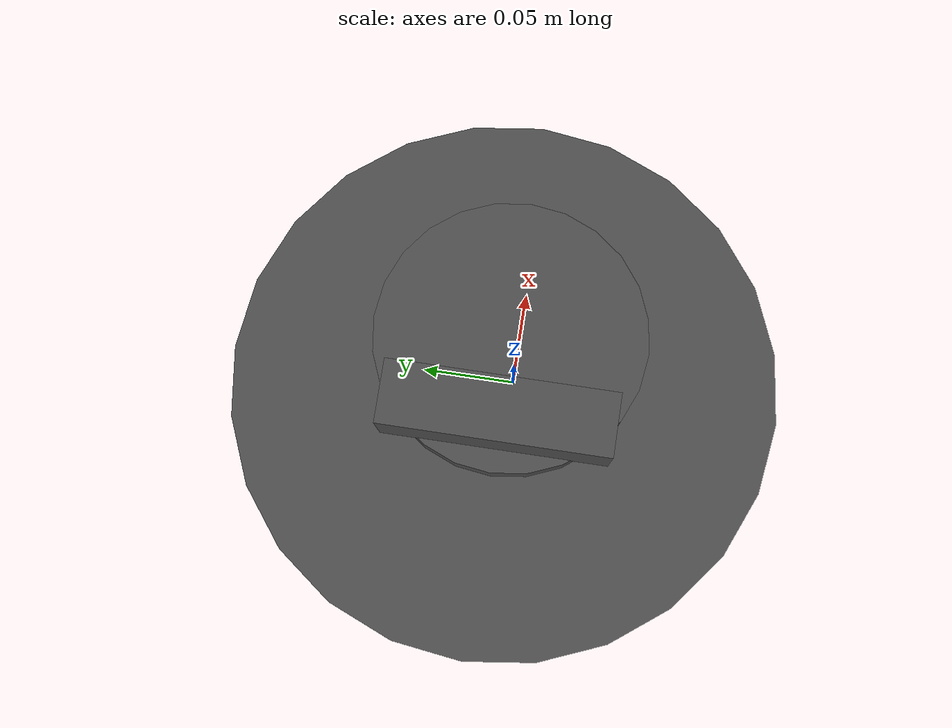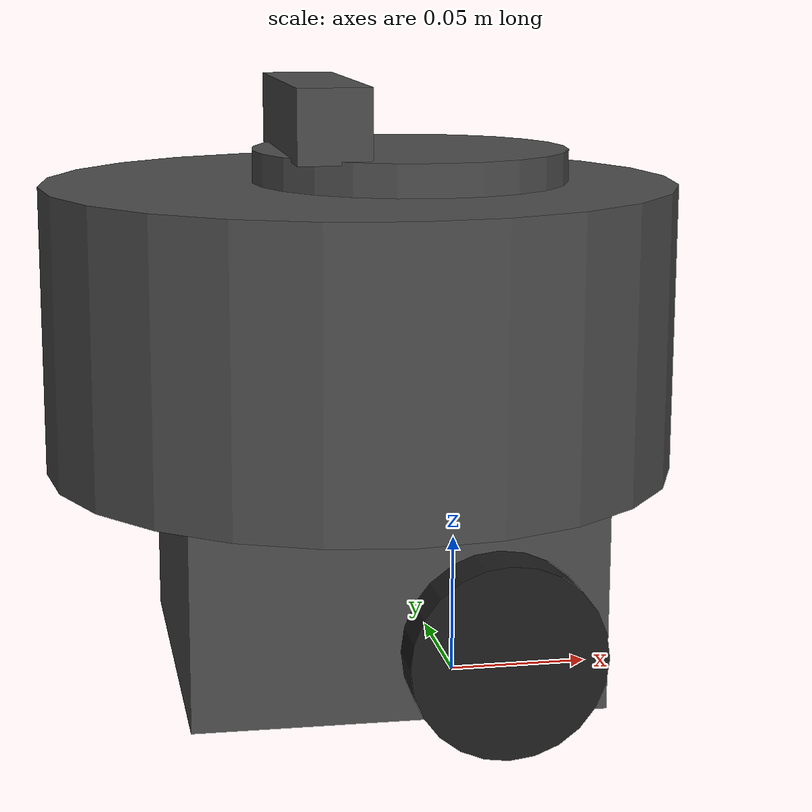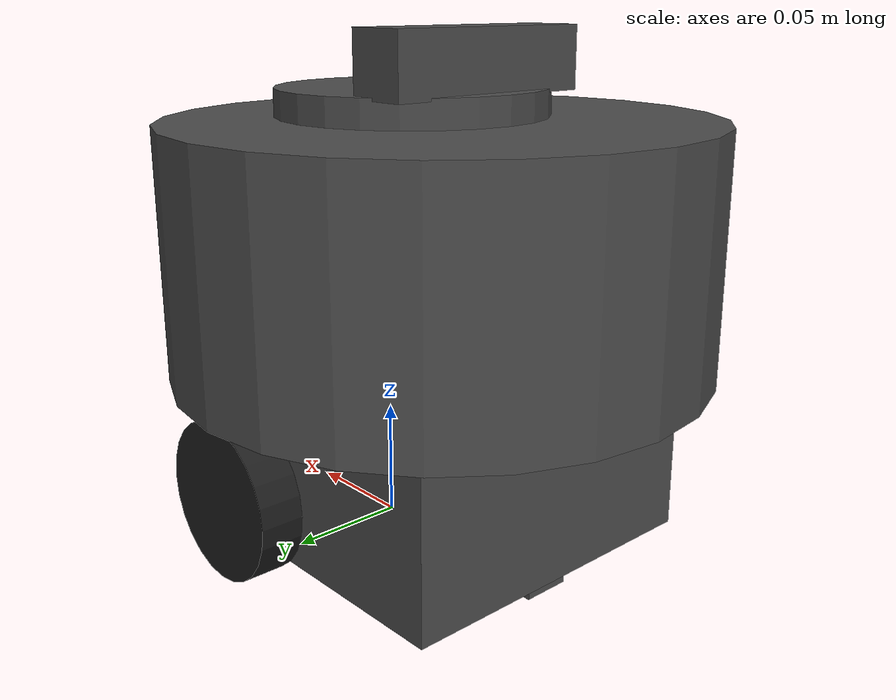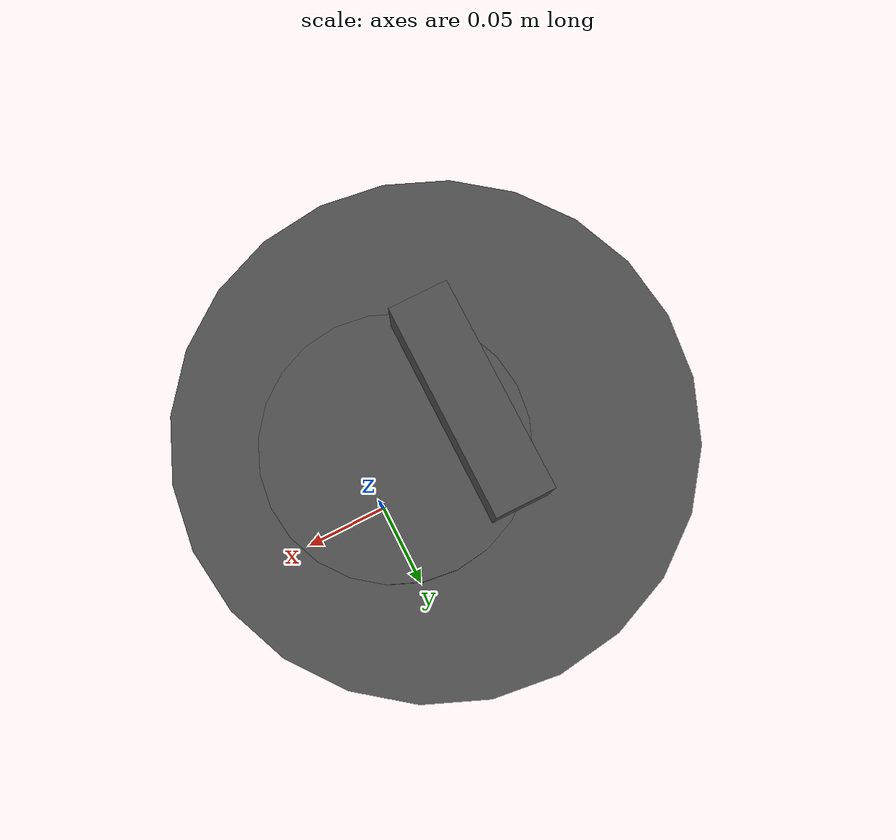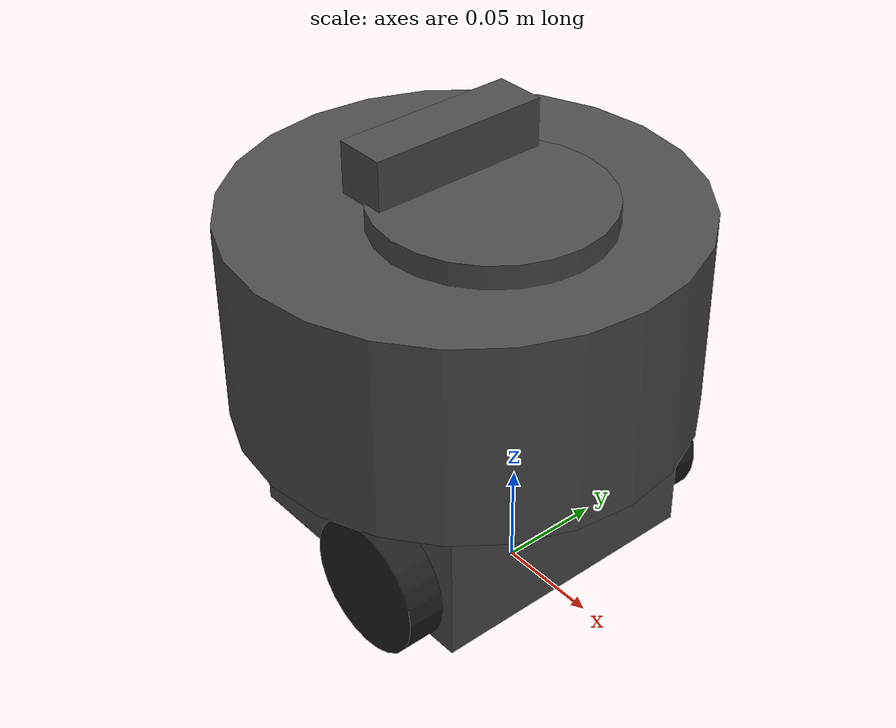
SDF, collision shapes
<sdf version='1.7'>
  <model name='tentabot'>
    <link name='turtlebot1/base_footprint'>
      <inertial>
        <pose>-0.00498 0.000142 0.033157 0 -0 0</pose>
        <mass>0.962535</mass>
        <inertia>
          <ixx>1.01139</ixx>
          <ixy>-6.14881e-06</ixy>
          <ixz>0.000666858</ixz>
          <iyy>1.00807</iyy>
          <iyz>-2.81274e-05</iyz>
          <izz>1.00805</izz>
        </inertia>
      </inertial>
      <collision name='turtlebot1/base_footprint_fixed_joint_lump__turtlebot1/base_link_collision'>
        <pose>-0.032 0 0.08 0 -0 0</pose>
        <geometry>
          <box>
            <size>0.14 0.14 0.143</size>
          </box>
        </geometry>
        <surface>
          <contact>
            <ode/>
          </contact>
          <friction>
            <ode/>
          </friction>
        </surface>
      </collision>
      <collision name='turtlebot1/base_footprint_fixed_joint_lump__bumper_collision_collision_1'>
        <pose>-0.035 0 0.13 0 -0 0</pose>
        <geometry>
          <cylinder>
            <length>0.1</length>
            <radius>0.11</radius>
          </cylinder>
        </geometry>
      </collision>
      <collision name='turtlebot1/base_footprint_fixed_joint_lump__d435_cam1camera_link_collision_2'>
        <pose>-0.05 0 0.2025 0 -0 0</pose>
        <geometry>
          <box>
            <size>0.02505 0.09 0.025</size>
          </box>
        </geometry>
        <surface>
          <contact>
            <ode/>
          </contact>
          <friction>
            <ode/>
          </friction>
        </surface>
      </collision>
      <collision name='turtlebot1/base_footprint_fixed_joint_lump__turtlebot1/caster_back_link_collision_3'>
        <pose>-0.081 1e-06 0.005 -1.57 0 0</pose>
        <geometry>
          <box>
            <size>0.03 0.009 0.02</size>
          </box>
        </geometry>
        <surface>
          <contact>
            <ode>
              <kp>1e+06</kp>
              <kd>100</kd>
              <max_vel>1</max_vel>
              <min_depth>0.001</min_depth>
            </ode>
          </contact>
          <friction>
            <ode>
              <mu>0.1</mu>
              <mu2>0.1</mu2>
            </ode>
          </friction>
        </surface>
      </collision>
      <collision name='turtlebot1/base_footprint_fixed_joint_lump__turtlebot1/base_scan_collision_4'>
        <pose>-0.017 0 0.1755 0 -0 0</pose>
        <geometry>
          <cylinder>
            <length>0.0315</length>
            <radius>0.055</radius>
          </cylinder>
        </geometry>
        <surface>
          <contact>
            <ode/>
          </contact>
          <friction>
            <ode/>
          </friction>
        </surface>
      </collision>
      <visual name='turtlebot1/base_footprint_fixed_joint_lump__turtlebot1/base_link_visual'>
        <pose>-0.032 0 0.01 0 -0 0</pose>
        <geometry>
          <mesh>
            <scale>0.001 0.001 0.001</scale>
            <uri>model://turtlebot3_description/meshes/bases/burger_base.stl</uri>
          </mesh>
        </geometry>
        <material>
          <script>
            <name>Gazebo/DarkGrey</name>
            <uri>file://media/materials/scripts/gazebo.material</uri>
          </script>
        </material>
      </visual>
      <visual name='turtlebot1/base_footprint_fixed_joint_lump__turtlebot1/bumper_link_visual_1'>
        <pose>-0.035 0 0.13 0 -0 0</pose>
        <geometry>
          <cylinder>
            <length>0.1</length>
            <radius>0.11</radius>
          </cylinder>
        </geometry>
        <material>
          <script>
            <name>Gazebo/Red</name>
            <uri>file://media/materials/scripts/gazebo.material</uri>
          </script>
        </material>
      </visual>
      <visual name='turtlebot1/base_footprint_fixed_joint_lump__d435_cam1camera_link_visual_2'>
        <pose>-0.0351 0 0.2025 1.5708 -0 1.5708</pose>
        <geometry>
          <mesh>
            <scale>0.001 0.001 0.001</scale>
            <uri>model://tentabot_devel/meshes/d435.stl</uri>
          </mesh>
        </geometry>
        <material>
          <script>
            <name>Gazebo/Grey</name>
            <uri>file://media/materials/scripts/gazebo.material</uri>
          </script>
        </material>
      </visual>
      <visual name='turtlebot1/base_footprint_fixed_joint_lump__turtlebot1/base_scan_visual_3'>
        <pose>-0.032 0 0.182 0 -0 0</pose>
        <geometry>
          <mesh>
            <scale>0.001 0.001 0.001</scale>
            <uri>model://turtlebot3_description/meshes/sensors/lds.stl</uri>
          </mesh>
        </geometry>
        <material>
          <script>
            <name>Gazebo/FlatBlack</name>
            <uri>file://media/materials/scripts/gazebo.material</uri>
          </script>
        </material>
      </visual>
      <velocity_decay/>
      <velocity_decay/>
      <self_collide>0</self_collide>
      <sensor name='turtlebot1/bumper_sensor' type='contact'>
        <visualize>1</visualize>
        <always_on>1</always_on>
        <update_rate>10</update_rate>
        <contact>
          <collision>turtlebot0/base_footprint_fixed_joint_lump__bumper_collision_collision_1</collision>
          <topic>__default_topic__</topic>
        </contact>
        <plugin name='gazebo_ros_bumper_controller' filename='libgazebo_ros_bumper.so'>
          <robotNamespace>turtlebot1</robotNamespace>
          <bumperTopicName>bumper_status</bumperTopicName>
          <frameName>turtlebot1/bumper_link</frameName>
        </plugin>
        <pose>-0.035 0 0.13 0 -0 0</pose>
      </sensor>
      <velocity_decay/>
      <velocity_decay/>
      <velocity_decay/>
      <sensor name='d435_cam1d435' type='depth'>
        <update_rate>30</update_rate>
        <camera>
          <horizontal_fov>1.59174</horizontal_fov>
          <image>
            <width>640</width>
            <height>480</height>
            <format>R8G8B8</format>
          </image>
          <clip>
            <near>0.02</near>
            <far>6</far>
          </clip>
        </camera>
        <plugin name='camera_plugin' filename='libgazebo_ros_openni_kinect.so'>
          <robotNamespace>/</robotNamespace>
          <visualize>1</visualize>
          <baseline>0.05</baseline>
          <alwaysOn>1</alwaysOn>
          <updateRate>0.0</updateRate>
          <cameraName>d435_cam1d435</cameraName>
          <imageTopicName>/d435_cam1d435/camera/color/image_raw</imageTopicName>
          <cameraInfoTopicName>/d435_cam1d435/camera/color/camera_info</cameraInfoTopicName>
          <depthImageTopicName>/d435_cam1d435/camera/depth/image_raw</depthImageTopicName>
          <depthImageInfoTopicName>/d435_cam1d435/camera/depth/camera_info</depthImageInfoTopicName>
          <pointCloudTopicName>/d435_cam1d435/camera/depth/color/points</pointCloudTopicName>
          <frameName>d435_cam1camera_depth_frame_gazebo</frameName>
          <pointCloudCutoff>0.02</pointCloudCutoff>
          <distortionK1>0</distortionK1>
          <distortionK2>0</distortionK2>
          <distortionK3>0</distortionK3>
          <distortionT1>0</distortionT1>
          <distortionT2>0</distortionT2>
          <CxPrime>0</CxPrime>
          <Cx>0</Cx>
          <Cy>0</Cy>
          <focalLength>0</focalLength>
          <hackBaseline>0</hackBaseline>
        </plugin>
        <pose>-0.05 0.0175 0.2025 0 -0 0</pose>
      </sensor>
      <velocity_decay/>
      <velocity_decay/>
      <velocity_decay/>
      <velocity_decay/>
      <velocity_decay/>
      <velocity_decay/>
      <velocity_decay/>
      <velocity_decay/>
      <velocity_decay/>
      <gravity>1</gravity>
      <velocity_decay/>
      <sensor name='imu' type='imu'>
        <always_on>1</always_on>
        <visualize>0</visualize>
        <pose>-0.032 0 0.078 0 -0 0</pose>
      </sensor>
      <gravity>1</gravity>
      <velocity_decay/>
      <sensor name='lds_lfcd_sensor' type='gpu_ray'>
        <visualize>1</visualize>
        <update_rate>50</update_rate>
        <ray>
          <scan>
            <horizontal>
              <samples>360</samples>
              <resolution>1</resolution>
              <min_angle>0</min_angle>
              <max_angle>6.28319</max_angle>
            </horizontal>
          </scan>
          <range>
            <min>0.12</min>
            <max>3.5</max>
            <resolution>0.015</resolution>
          </range>
          <noise>
            <type>gaussian</type>
            <mean>0</mean>
            <stddev>0.01</stddev>
          </noise>
        </ray>
        <plugin name='gazebo_ros_lds_lfcd_controller' filename='libgazebo_ros_gpu_laser.so'>
          <topicName>turtlebot1/scan</topicName>
          <frameName>turtlebot1/base_scan</frameName>
        </plugin>
        <pose>-0.032 0 0.182 0 -0 0</pose>
      </sensor>
    </link>
    <joint name='turtlebot1/wheel_left_joint' type='revolute'>
      <pose relative_to='turtlebot1/base_footprint'>0 0.08 0.033 -1.57 0 0</pose>
      <parent>turtlebot1/base_footprint</parent>
      <child>turtlebot1/wheel_left_link</child>
      <axis>
        <xyz>0 0 1</xyz>
        <limit>
          <lower>-1e+16</lower>
          <upper>1e+16</upper>
        </limit>
        <dynamics>
          <spring_reference>0</spring_reference>
          <spring_stiffness>0</spring_stiffness>
        </dynamics>
      </axis>
    </joint>
    <link name='turtlebot1/wheel_left_link'>
      <pose relative_to='turtlebot1/wheel_left_joint'>0 0 0 0 -0 0</pose>
      <inertial>
        <pose>0 0 0 0 -0 0</pose>
        <mass>0.0284989</mass>
        <inertia>
          <ixx>1.11756e-05</ixx>
          <ixy>-4.23698e-11</ixy>
          <ixz>-5.93817e-09</ixz>
          <iyy>1.11924e-05</iyy>
          <iyz>-1.44001e-11</iyz>
          <izz>2.07126e-05</izz>
        </inertia>
      </inertial>
      <collision name='turtlebot1/wheel_left_link_collision'>
        <pose>0 0 0 0 -0 0</pose>
        <geometry>
          <cylinder>
            <length>0.018</length>
            <radius>0.033</radius>
          </cylinder>
        </geometry>
        <surface>
          <contact>
            <ode>
              <kp>500000</kp>
              <kd>10</kd>
              <max_vel>0.1</max_vel>
              <min_depth>0.001</min_depth>
            </ode>
          </contact>
          <friction>
            <ode>
              <mu>0.1</mu>
              <mu2>0.1</mu2>
              <fdir1>1 0 0</fdir1>
            </ode>
          </friction>
        </surface>
      </collision>
      <visual name='turtlebot1/wheel_left_link_visual'>
        <pose>0 0 0 1.57 -0 0</pose>
        <geometry>
          <mesh>
            <scale>0.001 0.001 0.001</scale>
            <uri>model://turtlebot3_description/meshes/wheels/left_tire.stl</uri>
          </mesh>
        </geometry>
        <material>
          <script>
            <name>Gazebo/FlatBlack</name>
            <uri>file://media/materials/scripts/gazebo.material</uri>
          </script>
        </material>
      </visual>
      <gravity>1</gravity>
      <velocity_decay/>
    </link>
    <joint name='turtlebot1/wheel_right_joint' type='revolute'>
      <pose relative_to='turtlebot1/base_footprint'>0 -0.08 0.033 -1.57 0 0</pose>
      <parent>turtlebot1/base_footprint</parent>
      <child>turtlebot1/wheel_right_link</child>
      <axis>
        <xyz>0 0 1</xyz>
        <limit>
          <lower>-1e+16</lower>
          <upper>1e+16</upper>
        </limit>
        <dynamics>
          <spring_reference>0</spring_reference>
          <spring_stiffness>0</spring_stiffness>
        </dynamics>
      </axis>
    </joint>
    <link name='turtlebot1/wheel_right_link'>
      <pose relative_to='turtlebot1/wheel_right_joint'>0 0 0 0 -0 0</pose>
      <inertial>
        <pose>0 0 0 0 -0 0</pose>
        <mass>0.0284989</mass>
        <inertia>
          <ixx>1.11756e-05</ixx>
          <ixy>-4.23698e-11</ixy>
          <ixz>-5.93817e-09</ixz>
          <iyy>1.11924e-05</iyy>
          <iyz>-1.44001e-11</iyz>
          <izz>2.07126e-05</izz>
        </inertia>
      </inertial>
      <collision name='turtlebot1/wheel_right_link_collision'>
        <pose>0 0 0 0 -0 0</pose>
        <geometry>
          <cylinder>
            <length>0.018</length>
            <radius>0.033</radius>
          </cylinder>
        </geometry>
        <surface>
          <contact>
            <ode>
              <kp>500000</kp>
              <kd>10</kd>
              <max_vel>0.1</max_vel>
              <min_depth>0.001</min_depth>
            </ode>
          </contact>
          <friction>
            <ode>
              <mu>0.1</mu>
              <mu2>0.1</mu2>
              <fdir1>1 0 0</fdir1>
            </ode>
          </friction>
        </surface>
      </collision>
      <visual name='turtlebot1/wheel_right_link_visual'>
        <pose>0 0 0 1.57 -0 0</pose>
        <geometry>
          <mesh>
            <scale>0.001 0.001 0.001</scale>
            <uri>model://turtlebot3_description/meshes/wheels/right_tire.stl</uri>
          </mesh>
        </geometry>
        <material>
          <script>
            <name>Gazebo/FlatBlack</name>
            <uri>file://media/materials/scripts/gazebo.material</uri>
          </script>
        </material>
      </visual>
      <gravity>1</gravity>
      <velocity_decay/>
    </link>
    <plugin name='turtlebot3_burger_controller' filename='libgazebo_ros_diff_drive.so'>
      <commandTopic>turtlebot1/cmd_vel</commandTopic>
      <odometryTopic>turtlebot1/odom</odometryTopic>
      <odometryFrame>turtlebot1/odom</odometryFrame>
      <odometrySource>world</odometrySource>
      <publishOdomTF>1</publishOdomTF>
      <robotBaseFrame>turtlebot1/base_footprint</robotBaseFrame>
      <publishWheelTF>0</publishWheelTF>
      <publishTf>1</publishTf>
      <publishWheelJointState>1</publishWheelJointState>
      <legacyMode>0</legacyMode>
      <updateRate>30</updateRate>
      <leftJoint>turtlebot1/wheel_left_joint</leftJoint>
      <rightJoint>turtlebot1/wheel_right_joint</rightJoint>
      <wheelSeparation>0.160</wheelSeparation>
      <wheelDiameter>0.066</wheelDiameter>
      <wheelAcceleration>1</wheelAcceleration>
      <wheelTorque>10</wheelTorque>
      <rosDebugLevel>na</rosDebugLevel>
    </plugin>
    <static>0</static>
    <plugin name='imu_plugin' filename='libgazebo_ros_imu.so'>
      <alwaysOn>1</alwaysOn>
      <topicName>turtlebot1/imu</topicName>
      <serviceName>turtlebot1/imu_service</serviceName>
      <gaussianNoise>0.0</gaussianNoise>
      <updateRate>0</updateRate>
      <imu>
        <noise>
          <type>gaussian</type>
          <rate>
            <mean>0.0</mean>
            <stddev>2e-4</stddev>
            <bias_mean>0.0000075</bias_mean>
            <bias_stddev>0.0000008</bias_stddev>
          </rate>
          <accel>
            <mean>0.0</mean>
            <stddev>1.7e-2</stddev>
            <bias_mean>0.1</bias_mean>
            <bias_stddev>0.001</bias_stddev>
          </accel>
        </noise>
      </imu>
      <bodyName>turtlebot1/base_footprint</bodyName>
      <frameName>turtlebot1/base_footprint</frameName>
      <xyzOffset>0.064 0 -0.156</xyzOffset>
      <rpyOffset>0 -0 0</rpyOffset>
    </plugin>
  </model>
</sdf>
